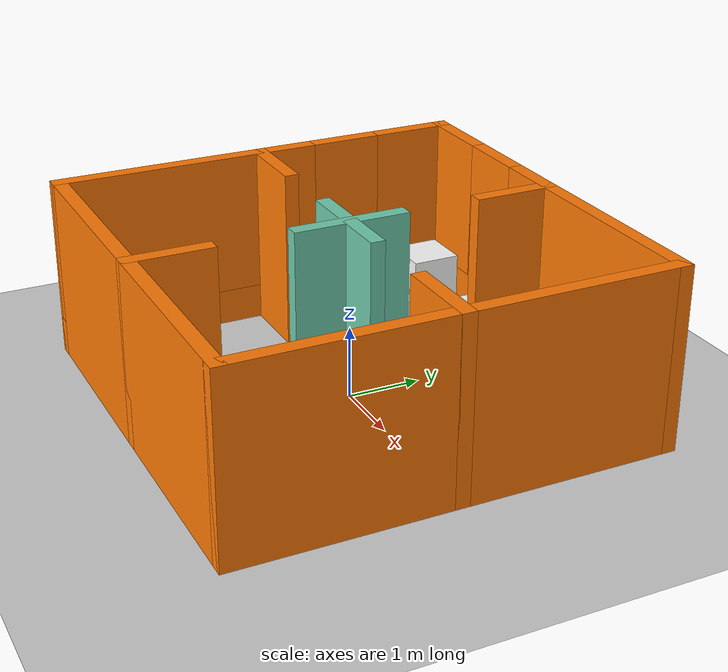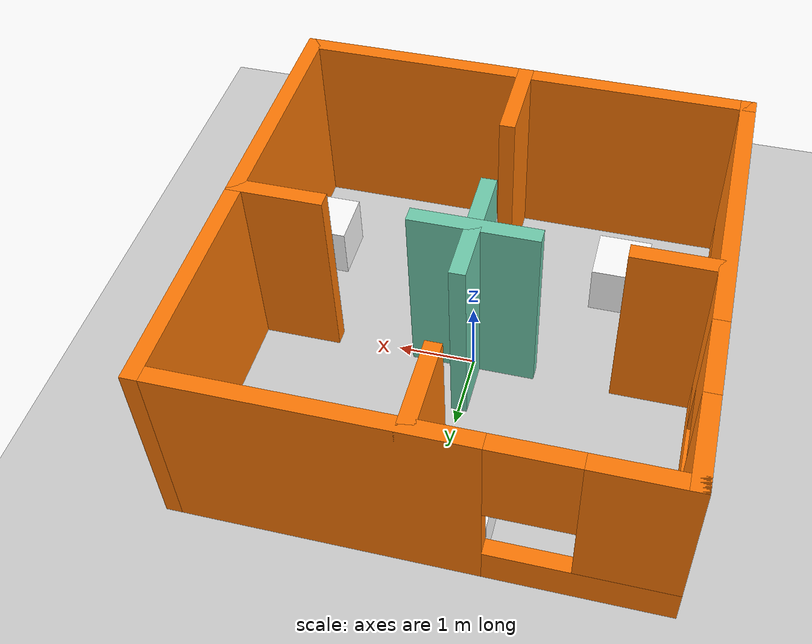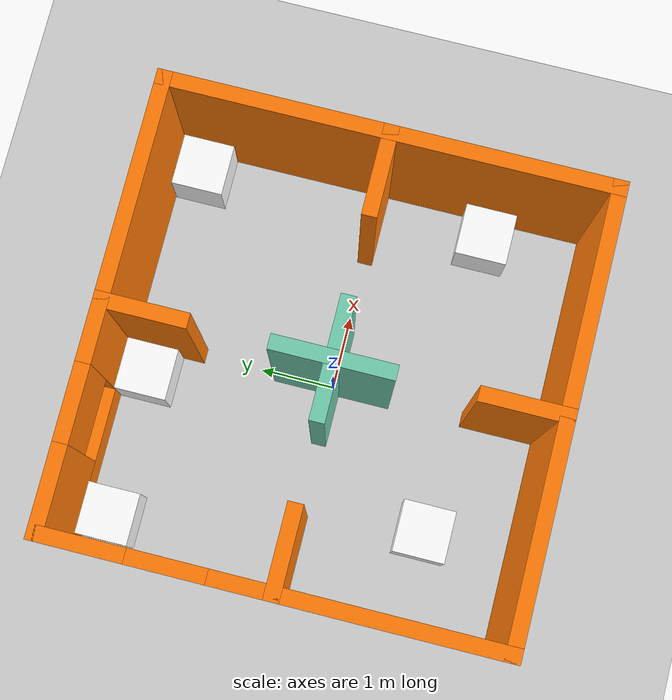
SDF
<sdf version="1.6">
 <world name="default">
  <light name="sun" type="directional">
   <pose>0 0 10 0 -0 0</pose>
   <diffuse>0.8 0.8 0.8 1</diffuse>
   <specular>0.2 0.2 0.2 1</specular>
   <attenuation>
    <range>1000</range>
    <constant>0.9</constant>
    <linear>0.01</linear>
    <quadratic>0.001</quadratic>
   </attenuation>
   <direction>-0.5 0.1 -0.9</direction>
   <spot><inner_angle>0</inner_angle><outer_angle>0</outer_angle><falloff>0</falloff></spot>
  </light>
  <model name="ground_plane">
   <static>1</static>
   <link name="link">
    <collision name="collision">
     <geometry><plane><normal>0 0 1</normal><size>100 100</size></plane></geometry>
     <surface><friction><ode><mu>100</mu><mu2>50</mu2></ode></friction></surface>
    </collision>
    <visual name="visual">
     <cast_shadows>0</cast_shadows>
     <geometry><plane><normal>0 0 1</normal><size>100 100</size></plane></geometry>
     <material>
      <script><uri>file://media/materials/scripts/gazebo.material</uri><name>Gazebo/Grey</name></script>
     </material>
    </visual>
   </link>
  </model>
  <gravity>0 0 -9.8</gravity>
  <magnetic_field>6e-06 2.3e-05 -4.2e-05</magnetic_field>
  <atmosphere type="adiabatic"/>
  <physics name="default_physics" default="0" type="ode">
   <max_step_size>0.001</max_step_size>
   <real_time_factor>1</real_time_factor>
   <real_time_update_rate>1000</real_time_update_rate>
  </physics>
  <scene><ambient>0.4 0.4 0.4 1</ambient><background>0.7 0.7 0.7 1</background><shadows>1</shadows></scene>
  <spherical_coordinates>
   <surface_model>EARTH_WGS84</surface_model>
   <latitude_deg>0</latitude_deg>
   <longitude_deg>0</longitude_deg>
   <elevation>0</elevation>
   <heading_deg>0</heading_deg>
  </spherical_coordinates>
  <model name="Building_0">
   <link name="Wall_0">
    <pose>-2.9 0 0 0 0 -1.5708</pose>
    <visual name="Wall_0_Visual_0">
     <pose>-2.4 0 1.25 0 -0 0</pose>
     <geometry><box><size>1.2 0.2 2.5</size></box></geometry>
     <material>
      <script><uri>file://media/materials/scripts/gazebo.material</uri><name>Gazebo/Grey</name></script>
      <ambient>0.996078 0.47451 0.0196078 1</ambient>
     </material>
     <meta><layer>0</layer></meta>
    </visual>
    <collision name="Wall_0_Collision_0">
     <geometry><box><size>1.2 0.2 2.5</size></box></geometry>
     <pose>-2.4 0 1.25 0 -0 0</pose>
    </collision>
    <visual name="Wall_0_Visual_1">
     <pose>0.6 0 0.25 0 -0 0</pose>
     <geometry><box><size>4.8 0.2 0.5</size></box></geometry>
     <material>
      <script><uri>file://media/materials/scripts/gazebo.material</uri><name>Gazebo/Grey</name></script>
      <ambient>0.996078 0.47451 0.0196078 1</ambient>
     </material>
     <meta><layer>0</layer></meta>
    </visual>
    <collision name="Wall_0_Collision_1">
     <geometry><box><size>4.8 0.2 0.5</size></box></geometry>
     <pose>0.6 0 0.25 0 -0 0</pose>
    </collision>
    <visual name="Wall_0_Visual_2">
     <pose>1.1 0 1.5 0 -0 0</pose>
     <geometry><box><size>3.8 0.2 2</size></box></geometry>
     <material>
      <script><uri>file://media/materials/scripts/gazebo.material</uri><name>Gazebo/Grey</name></script>
      <ambient>0.996078 0.47451 0.0196078 1</ambient>
     </material>
     <meta><layer>0</layer></meta>
    </visual>
    <collision name="Wall_0_Collision_2">
     <geometry><box><size>3.8 0.2 2</size></box></geometry>
     <pose>1.1 0 1.5 0 -0 0</pose>
    </collision>
    <visual name="Wall_0_Visual_3">
     <pose>-1.3 0 1.9 0 -0 0</pose>
     <geometry><box><size>1 0.2 1.2</size></box></geometry>
     <material>
      <script><uri>file://media/materials/scripts/gazebo.material</uri><name>Gazebo/Grey</name></script>
      <ambient>0.996078 0.47451 0.0196078 1</ambient>
     </material>
     <meta><layer>0</layer></meta>
    </visual>
    <collision name="Wall_0_Collision_3">
     <geometry><box><size>1 0.2 1.2</size></box></geometry>
     <pose>-1.3 0 1.9 0 -0 0</pose>
    </collision>
   </link>
   <link name="Wall_1">
    <collision name="Wall_1_Collision">
     <geometry><box><size>6 0.2 2.5</size></box></geometry>
     <pose>0 0 1.25 0 -0 0</pose>
    </collision>
    <visual name="Wall_1_Visual">
     <pose>0 0 1.25 0 -0 0</pose>
     <geometry><box><size>6 0.2 2.5</size></box></geometry>
     <material>
      <script><uri>file://media/materials/scripts/gazebo.material</uri><name>Gazebo/Grey</name></script>
      <ambient>0.996078 0.47451 0.0196078 1</ambient>
     </material>
     <meta><layer>0</layer></meta>
    </visual>
    <pose>0 -2.9 0 0 -0 0</pose>
   </link>
   <link name="Wall_11">
    <collision name="Wall_11_Collision">
     <geometry><box><size>1.2 0.2 2.5</size></box></geometry>
     <pose>0 0 1.25 0 -0 0</pose>
    </collision>
    <visual name="Wall_11_Visual">
     <pose>0 0 1.25 0 -0 0</pose>
     <geometry><box><size>1.2 0.2 2.5</size></box></geometry>
     <material>
      <script><uri>file://media/materials/scripts/gazebo.material</uri><name>Gazebo/Grey</name></script>
      <ambient>0.996078 0.47451 0.0196078 1</ambient>
     </material>
     <meta><layer>0</layer></meta>
    </visual>
    <pose>2.4 0 0 0 -0 3.14159</pose>
   </link>
   <link name="Wall_13">
    <collision name="Wall_13_Collision">
     <geometry><box><size>1.6 0.2 2.5</size></box></geometry>
     <pose>0 0 1.25 0 -0 0</pose>
    </collision>
    <visual name="Wall_13_Visual">
     <pose>0 0 1.25 0 -0 0</pose>
     <geometry><box><size>1.6 0.2 2.5</size></box></geometry>
     <material>
      <script><uri>file://media/materials/scripts/gazebo.material</uri><name>Gazebo/Grey</name></script>
      <ambient>0.435294 0.796078 0.67451 1</ambient>
     </material>
     <meta><layer>0</layer></meta>
    </visual>
    <pose>-0.013 0 0 0 -0 0</pose>
   </link>
   <link name="Wall_15">
    <collision name="Wall_15_Collision">
     <geometry><box><size>1.6 0.2 2.5</size></box></geometry>
     <pose>0 0 1.25 0 -0 0</pose>
    </collision>
    <visual name="Wall_15_Visual">
     <pose>0 0 1.25 0 -0 0</pose>
     <geometry><box><size>1.6 0.2 2.5</size></box></geometry>
     <material>
      <script><uri>file://media/materials/scripts/gazebo.material</uri><name>Gazebo/Grey</name></script>
      <ambient>0.435294 0.796078 0.67451 1</ambient>
     </material>
     <meta><layer>0</layer></meta>
    </visual>
    <pose>0 0 0 0 0 -1.5708</pose>
   </link>
   <link name="Wall_2">
    <collision name="Wall_2_Collision">
     <geometry><box><size>6 0.2 2.5</size></box></geometry>
     <pose>0 0 1.25 0 -0 0</pose>
    </collision>
    <visual name="Wall_2_Visual">
     <pose>0 0 1.25 0 -0 0</pose>
     <geometry><box><size>6 0.2 2.5</size></box></geometry>
     <material>
      <script><uri>file://media/materials/scripts/gazebo.material</uri><name>Gazebo/Grey</name></script>
      <ambient>0.996078 0.47451 0.0196078 1</ambient>
     </material>
     <meta><layer>0</layer></meta>
    </visual>
    <pose>2.9 0 0 0 -0 1.5708</pose>
   </link>
   <link name="Wall_3">
    <pose>0 2.9 0 0 -0 3.14159</pose>
    <visual name="Wall_3_Visual_0">
     <pose>-1.1 0 1.25 0 -0 0</pose>
     <geometry><box><size>3.8 0.2 2.5</size></box></geometry>
     <material>
      <script><uri>file://media/materials/scripts/gazebo.material</uri><name>Gazebo/Grey</name></script>
      <ambient>0.996078 0.47451 0.0196078 1</ambient>
     </material>
     <meta><layer>0</layer></meta>
    </visual>
    <collision name="Wall_3_Collision_0">
     <geometry><box><size>3.8 0.2 2.5</size></box></geometry>
     <pose>-1.1 0 1.25 0 -0 0</pose>
    </collision>
    <visual name="Wall_3_Visual_1">
     <pose>1.9 0 0.25 0 -0 0</pose>
     <geometry><box><size>2.2 0.2 0.5</size></box></geometry>
     <material>
      <script><uri>file://media/materials/scripts/gazebo.material</uri><name>Gazebo/Grey</name></script>
      <ambient>0.996078 0.47451 0.0196078 1</ambient>
     </material>
     <meta><layer>0</layer></meta>
    </visual>
    <collision name="Wall_3_Collision_1">
     <geometry><box><size>2.2 0.2 0.5</size></box></geometry>
     <pose>1.9 0 0.25 0 -0 0</pose>
    </collision>
    <visual name="Wall_3_Visual_2">
     <pose>2.4 0 1.5 0 -0 0</pose>
     <geometry><box><size>1.2 0.2 2</size></box></geometry>
     <material>
      <script><uri>file://media/materials/scripts/gazebo.material</uri><name>Gazebo/Grey</name></script>
      <ambient>0.996078 0.47451 0.0196078 1</ambient>
     </material>
     <meta><layer>0</layer></meta>
    </visual>
    <collision name="Wall_3_Collision_2">
     <geometry><box><size>1.2 0.2 2</size></box></geometry>
     <pose>2.4 0 1.5 0 -0 0</pose>
    </collision>
    <visual name="Wall_3_Visual_3">
     <pose>1.3 0 1.9 0 -0 0</pose>
     <geometry><box><size>1 0.2 1.2</size></box></geometry>
     <material>
      <script><uri>file://media/materials/scripts/gazebo.material</uri><name>Gazebo/Grey</name></script>
      <ambient>0.996078 0.47451 0.0196078 1</ambient>
     </material>
     <meta><layer>0</layer></meta>
    </visual>
    <collision name="Wall_3_Collision_3">
     <geometry><box><size>1 0.2 1.2</size></box></geometry>
     <pose>1.3 0 1.9 0 -0 0</pose>
    </collision>
   </link>
   <link name="Wall_5">
    <collision name="Wall_5_Collision">
     <geometry><box><size>1.2 0.2 2.5</size></box></geometry>
     <pose>0 0 1.25 0 -0 0</pose>
    </collision>
    <visual name="Wall_5_Visual">
     <pose>0 0 1.25 0 -0 0</pose>
     <geometry><box><size>1.2 0.2 2.5</size></box></geometry>
     <material>
      <script><uri>file://media/materials/scripts/gazebo.material</uri><name>Gazebo/Grey</name></script>
      <ambient>0.996078 0.47451 0.0196078 1</ambient>
     </material>
     <meta><layer>0</layer></meta>
    </visual>
    <pose>0 -2.4 0 0 -0 1.5708</pose>
   </link>
   <link name="Wall_7">
    <collision name="Wall_7_Collision">
     <geometry><box><size>1.2 0.2 2.5</size></box></geometry>
     <pose>0 0 1.25 0 -0 0</pose>
    </collision>
    <visual name="Wall_7_Visual">
     <pose>0 0 1.25 0 -0 0</pose>
     <geometry><box><size>1.2 0.2 2.5</size></box></geometry>
     <material>
      <script><uri>file://media/materials/scripts/gazebo.material</uri><name>Gazebo/Grey</name></script>
      <ambient>0.996078 0.47451 0.0196078 1</ambient>
     </material>
     <meta><layer>0</layer></meta>
    </visual>
    <pose>0 2.4 0 0 0 -1.5708</pose>
   </link>
   <link name="Wall_9">
    <collision name="Wall_9_Collision">
     <geometry><box><size>1.2 0.2 2.5</size></box></geometry>
     <pose>0 0 1.25 0 -0 0</pose>
    </collision>
    <visual name="Wall_9_Visual">
     <pose>0 0 1.25 0 -0 0</pose>
     <geometry><box><size>1.2 0.2 2.5</size></box></geometry>
     <material>
      <script><uri>file://media/materials/scripts/gazebo.material</uri><name>Gazebo/Grey</name></script>
      <ambient>0.996078 0.47451 0.0196078 1</ambient>
     </material>
     <meta><layer>0</layer></meta>
    </visual>
    <pose>-2.4 0 0 0 -0 0</pose>
   </link>
   <static>1</static>
  </model>
  <model name="static_box_4">
   <link name="link">
    <inertial>
     <mass>1</mass>
     <inertia>
      <ixx>0.166667</ixx>
      <ixy>0</ixy>
      <ixz>0</ixz>
      <iyy>0.166667</iyy>
      <iyz>0</iyz>
      <izz>0.166667</izz>
     </inertia>
    </inertial>
    <visual name="visual">
     <geometry><box><size>0.7 0.7 0.7</size></box></geometry>
     <material>
      <script>
       <uri>file://src/my_robot/media/materials/scripts</uri>
       <uri>file://src/my_robot/media/materials/textures</uri>
       <name>Material4</name>
      </script>
      <ambient>1 1 1 1</ambient>
      <diffuse>1 1 1 1</diffuse>
      <specular>0 0 0 1</specular>
      <emissive>0 0 0 1</emissive>
      <shader type="vertex"><normal_map>__default__</normal_map></shader>
     </material>
    </visual>
    <collision name="collision">
     <geometry><box><size>0.7 0.7 0.7</size></box></geometry>
     <surface>
      <friction>
       <ode><mu>1</mu><mu2>1</mu2><fdir1>0 0 0</fdir1><slip1>0</slip1><slip2>0</slip2></ode>
       <torsional>
        <coefficient>1</coefficient>
        <patch_radius>0</patch_radius>
        <surface_radius>0</surface_radius>
        <use_patch_radius>1</use_patch_radius>
        <ode><slip>0</slip></ode>
       </torsional>
      </friction>
      <bounce><restitution_coefficient>0</restitution_coefficient><threshold>1e+06</threshold></bounce>
      <contact>
       <collide_without_contact>0</collide_without_contact>
       <collide_without_contact_bitmask>1</collide_without_contact_bitmask>
       <collide_bitmask>1</collide_bitmask>
       <ode>
        <soft_cfm>0</soft_cfm>
        <soft_erp>0.2</soft_erp>
        <kp>1e+13</kp>
        <kd>1</kd>
        <max_vel>0.01</max_vel>
        <min_depth>0</min_depth>
       </ode>
       <bullet>
        <split_impulse>1</split_impulse>
        <split_impulse_penetration_threshold>-0.01</split_impulse_penetration_threshold>
        <soft_cfm>0</soft_cfm>
        <soft_erp>0.2</soft_erp>
        <kp>1e+13</kp>
        <kd>1</kd>
       </bullet>
      </contact>
     </surface>
    </collision>
   </link>
   <static>1</static>
   <pose>-2.42867 2.42843 0.35 0 -0 0</pose>
  </model>
  <model name="static_box_3">
   <link name="link">
    <inertial>
     <mass>1</mass>
     <inertia>
      <ixx>0.166667</ixx>
      <ixy>0</ixy>
      <ixz>0</ixz>
      <iyy>0.166667</iyy>
      <iyz>0</iyz>
      <izz>0.166667</izz>
     </inertia>
    </inertial>
    <visual name="visual">
     <geometry><box><size>0.7 0.7 0.7</size></box></geometry>
     <material>
      <script>
       <uri>file://src/my_robot/media/materials/scripts</uri>
       <uri>file://src/my_robot/media/materials/textures</uri>
       <name>Material3</name>
      </script>
      <ambient>1 1 1 1</ambient>
      <diffuse>1 1 1 1</diffuse>
      <specular>0 0 0 1</specular>
      <emissive>0 0 0 1</emissive>
      <shader type="vertex"><normal_map>__default__</normal_map></shader>
     </material>
    </visual>
    <collision name="collision">
     <geometry><box><size>0.7 0.7 0.7</size></box></geometry>
     <surface>
      <friction>
       <ode><mu>1</mu><mu2>1</mu2><fdir1>0 0 0</fdir1><slip1>0</slip1><slip2>0</slip2></ode>
       <torsional>
        <coefficient>1</coefficient>
        <patch_radius>0</patch_radius>
        <surface_radius>0</surface_radius>
        <use_patch_radius>1</use_patch_radius>
        <ode><slip>0</slip></ode>
       </torsional>
      </friction>
      <bounce><restitution_coefficient>0</restitution_coefficient><threshold>1e+06</threshold></bounce>
      <contact>
       <collide_without_contact>0</collide_without_contact>
       <collide_without_contact_bitmask>1</collide_without_contact_bitmask>
       <collide_bitmask>1</collide_bitmask>
       <ode>
        <soft_cfm>0</soft_cfm>
        <soft_erp>0.2</soft_erp>
        <kp>1e+13</kp>
        <kd>1</kd>
        <max_vel>0.01</max_vel>
        <min_depth>0</min_depth>
       </ode>
       <bullet>
        <split_impulse>1</split_impulse>
        <split_impulse_penetration_threshold>-0.01</split_impulse_penetration_threshold>
        <soft_cfm>0</soft_cfm>
        <soft_erp>0.2</soft_erp>
        <kp>1e+13</kp>
        <kd>1</kd>
       </bullet>
      </contact>
     </surface>
    </collision>
   </link>
   <static>1</static>
   <pose>-0.454601 2.44203 0.35 0 -0 0</pose>
  </model>
  <model name="static_box_2">
   <link name="link">
    <inertial>
     <mass>1</mass>
     <inertia>
      <ixx>0.166667</ixx>
      <ixy>0</ixy>
      <ixz>0</ixz>
      <iyy>0.166667</iyy>
      <iyz>0</iyz>
      <izz>0.166667</izz>
     </inertia>
    </inertial>
    <visual name="visual">
     <geometry><box><size>0.7 0.7 0.7</size></box></geometry>
     <material>
      <script>
       <uri>file://src/my_robot/media/materials/scripts</uri>
       <uri>file://src/my_robot/media/materials/textures</uri>
       <name>Material2</name>
      </script>
      <ambient>1 1 1 1</ambient>
      <diffuse>1 1 1 1</diffuse>
      <specular>0 0 0 1</specular>
      <emissive>0 0 0 1</emissive>
      <shader type="vertex"><normal_map>__default__</normal_map></shader>
     </material>
    </visual>
    <collision name="collision">
     <geometry><box><size>0.7 0.7 0.7</size></box></geometry>
     <surface>
      <friction>
       <ode><mu>1</mu><mu2>1</mu2><fdir1>0 0 0</fdir1><slip1>0</slip1><slip2>0</slip2></ode>
       <torsional>
        <coefficient>1</coefficient>
        <patch_radius>0</patch_radius>
        <surface_radius>0</surface_radius>
        <use_patch_radius>1</use_patch_radius>
        <ode><slip>0</slip></ode>
       </torsional>
      </friction>
      <bounce><restitution_coefficient>0</restitution_coefficient><threshold>1e+06</threshold></bounce>
      <contact>
       <collide_without_contact>0</collide_without_contact>
       <collide_without_contact_bitmask>1</collide_without_contact_bitmask>
       <collide_bitmask>1</collide_bitmask>
       <ode>
        <soft_cfm>0</soft_cfm>
        <soft_erp>0.2</soft_erp>
        <kp>1e+13</kp>
        <kd>1</kd>
        <max_vel>0.01</max_vel>
        <min_depth>0</min_depth>
       </ode>
       <bullet>
        <split_impulse>1</split_impulse>
        <split_impulse_penetration_threshold>-0.01</split_impulse_penetration_threshold>
        <soft_cfm>0</soft_cfm>
        <soft_erp>0.2</soft_erp>
        <kp>1e+13</kp>
        <kd>1</kd>
       </bullet>
      </contact>
     </surface>
    </collision>
   </link>
   <static>1</static>
   <pose>2.43691 -1.51717 0.35 0 -0 0</pose>
  </model>
  <model name="static_box_1">
   <link name="link">
    <inertial>
     <mass>1</mass>
     <inertia>
      <ixx>0.166667</ixx>
      <ixy>0</ixy>
      <ixz>0</ixz>
      <iyy>0.166667</iyy>
      <iyz>0</iyz>
      <izz>0.166667</izz>
     </inertia>
    </inertial>
    <visual name="visual">
     <geometry><box><size>0.7 0.7 0.7</size></box></geometry>
     <material>
      <script>
       <uri>file://src/my_robot/media/materials/scripts</uri>
       <uri>file://src/my_robot/media/materials/textures</uri>
       <name>Material1</name>
      </script>
      <ambient>1 1 1 1</ambient>
      <diffuse>1 1 1 1</diffuse>
      <specular>0 0 0 1</specular>
      <emissive>0 0 0 1</emissive>
      <shader type="vertex"><normal_map>__default__</normal_map></shader>
     </material>
    </visual>
    <collision name="collision">
     <geometry><box><size>0.7 0.7 0.7</size></box></geometry>
     <surface>
      <friction>
       <ode><mu>1</mu><mu2>1</mu2><fdir1>0 0 0</fdir1><slip1>0</slip1><slip2>0</slip2></ode>
       <torsional>
        <coefficient>1</coefficient>
        <patch_radius>0</patch_radius>
        <surface_radius>0</surface_radius>
        <use_patch_radius>1</use_patch_radius>
        <ode><slip>0</slip></ode>
       </torsional>
      </friction>
      <bounce><restitution_coefficient>0</restitution_coefficient><threshold>1e+06</threshold></bounce>
      <contact>
       <collide_without_contact>0</collide_without_contact>
       <collide_without_contact_bitmask>1</collide_without_contact_bitmask>
       <collide_bitmask>1</collide_bitmask>
       <ode>
        <soft_cfm>0</soft_cfm>
        <soft_erp>0.2</soft_erp>
        <kp>1e+13</kp>
        <kd>1</kd>
        <max_vel>0.01</max_vel>
        <min_depth>0</min_depth>
       </ode>
       <bullet>
        <split_impulse>1</split_impulse>
        <split_impulse_penetration_threshold>-0.01</split_impulse_penetration_threshold>
        <soft_cfm>0</soft_cfm>
        <soft_erp>0.2</soft_erp>
        <kp>1e+13</kp>
        <kd>1</kd>
       </bullet>
      </contact>
     </surface>
    </collision>
   </link>
   <static>1</static>
   <pose>2.44482 2.43769 0.35 0 -0 0</pose>
  </model>
  <model name="static_box_5">
   <link name="link">
    <inertial>
     <mass>1</mass>
     <inertia>
      <ixx>0.166667</ixx>
      <ixy>0</ixy>
      <ixz>0</ixz>
      <iyy>0.166667</iyy>
      <iyz>0</iyz>
      <izz>0.166667</izz>
     </inertia>
    </inertial>
    <visual name="visual">
     <geometry><box><size>0.7 0.7 0.7</size></box></geometry>
     <material>
      <script>
       <uri>file://src/my_robot/media/materials/scripts</uri>
       <uri>file://src/my_robot/media/materials/textures</uri>
       <name>Material5</name>
      </script>
      <ambient>1 1 1 1</ambient>
      <diffuse>1 1 1 1</diffuse>
      <specular>0 0 0 1</specular>
      <emissive>0 0 0 1</emissive>
      <shader type="vertex"><normal_map>__default__</normal_map></shader>
     </material>
    </visual>
    <collision name="collision">
     <geometry><box><size>0.7 0.7 0.7</size></box></geometry>
     <surface>
      <friction>
       <ode><mu>1</mu><mu2>1</mu2><fdir1>0 0 0</fdir1><slip1>0</slip1><slip2>0</slip2></ode>
       <torsional>
        <coefficient>1</coefficient>
        <patch_radius>0</patch_radius>
        <surface_radius>0</surface_radius>
        <use_patch_radius>1</use_patch_radius>
        <ode><slip>0</slip></ode>
       </torsional>
      </friction>
      <bounce><restitution_coefficient>0</restitution_coefficient><threshold>1e+06</threshold></bounce>
      <contact>
       <collide_without_contact>0</collide_without_contact>
       <collide_without_contact_bitmask>1</collide_without_contact_bitmask>
       <collide_bitmask>1</collide_bitmask>
       <ode>
        <soft_cfm>0</soft_cfm>
        <soft_erp>0.2</soft_erp>
        <kp>1e+13</kp>
        <kd>1</kd>
        <max_vel>0.01</max_vel>
        <min_depth>0</min_depth>
       </ode>
       <bullet>
        <split_impulse>1</split_impulse>
        <split_impulse_penetration_threshold>-0.01</split_impulse_penetration_threshold>
        <soft_cfm>0</soft_cfm>
        <soft_erp>0.2</soft_erp>
        <kp>1e+13</kp>
        <kd>1</kd>
       </bullet>
      </contact>
     </surface>
    </collision>
   </link>
   <static>1</static>
   <pose>-1.6452 -1.6423 0.35 0 -0 0</pose>
  </model>
 </world>
</sdf>
